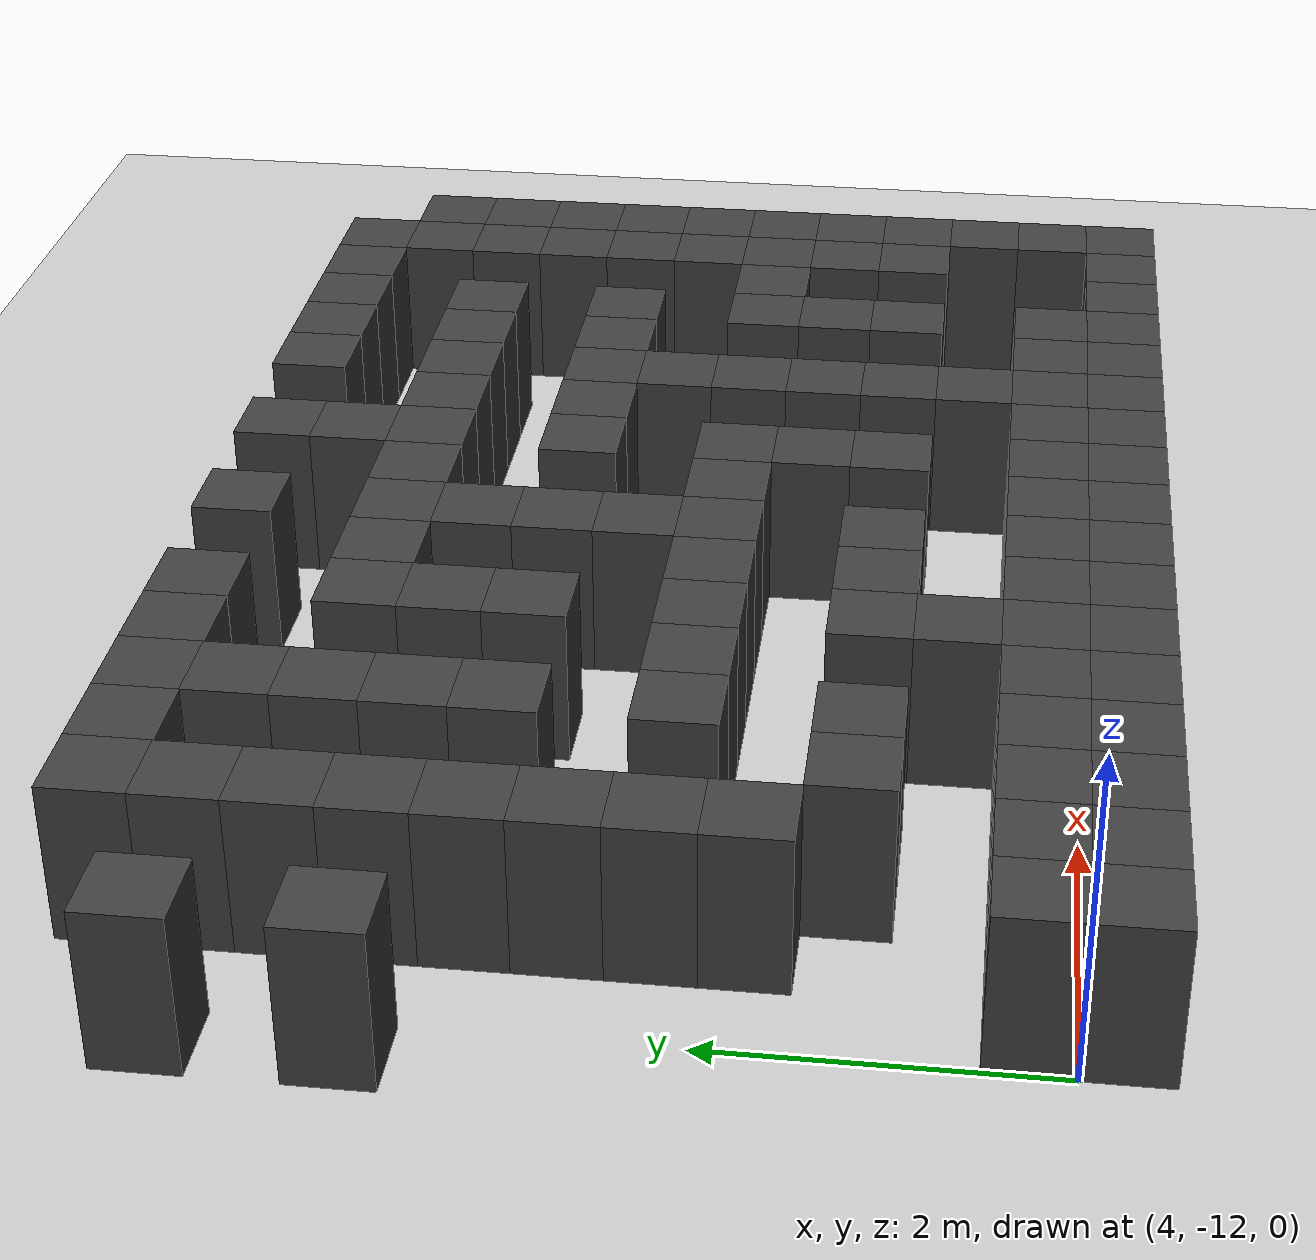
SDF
<sdf version="1.7">
 <world name="map_18814">
  <model name="ground_plane">
   <static>true</static>
   <link name="link">
    <collision name="collision">
     <geometry><plane><normal>0 0 1</normal><size>200 200</size></plane></geometry>
    </collision>
    <visual name="visual">
     <geometry><plane><normal>0 0 1</normal><size>200 200</size></plane></geometry>
     <material><ambient>0.8 0.8 0.8 1</ambient><diffuse>0.8 0.8 0.8 1</diffuse></material>
    </visual>
   </link>
  </model>
  <model name="maze_environment">
   <static>true</static>
   <link name="wall_989">
    <pose>4.750 -6.750 0.500 0 0 0</pose>
    <collision name="col"><geometry><box><size>0.5 0.5 1.0</size></box></geometry></collision>
    <visual name="vis">
     <geometry><box><size>0.5 0.5 1.0</size></box></geometry>
     <material><ambient>0.15 0.15 0.15 1</ambient><diffuse>0.25 0.25 0.25 1</diffuse></material>
    </visual>
   </link>
   <link name="wall_990">
    <pose>5.250 -6.750 0.500 0 0 0</pose>
    <collision name="col"><geometry><box><size>0.5 0.5 1.0</size></box></geometry></collision>
    <visual name="vis">
     <geometry><box><size>0.5 0.5 1.0</size></box></geometry>
     <material><ambient>0.15 0.15 0.15 1</ambient><diffuse>0.25 0.25 0.25 1</diffuse></material>
    </visual>
   </link>
   <link name="wall_991">
    <pose>5.750 -6.750 0.500 0 0 0</pose>
    <collision name="col"><geometry><box><size>0.5 0.5 1.0</size></box></geometry></collision>
    <visual name="vis">
     <geometry><box><size>0.5 0.5 1.0</size></box></geometry>
     <material><ambient>0.15 0.15 0.15 1</ambient><diffuse>0.25 0.25 0.25 1</diffuse></material>
    </visual>
   </link>
   <link name="wall_992">
    <pose>6.250 -6.750 0.500 0 0 0</pose>
    <collision name="col"><geometry><box><size>0.5 0.5 1.0</size></box></geometry></collision>
    <visual name="vis">
     <geometry><box><size>0.5 0.5 1.0</size></box></geometry>
     <material><ambient>0.15 0.15 0.15 1</ambient><diffuse>0.25 0.25 0.25 1</diffuse></material>
    </visual>
   </link>
   <link name="wall_993">
    <pose>6.750 -6.750 0.500 0 0 0</pose>
    <collision name="col"><geometry><box><size>0.5 0.5 1.0</size></box></geometry></collision>
    <visual name="vis">
     <geometry><box><size>0.5 0.5 1.0</size></box></geometry>
     <material><ambient>0.15 0.15 0.15 1</ambient><diffuse>0.25 0.25 0.25 1</diffuse></material>
    </visual>
   </link>
   <link name="wall_994">
    <pose>7.750 -6.750 0.500 0 0 0</pose>
    <collision name="col"><geometry><box><size>0.5 0.5 1.0</size></box></geometry></collision>
    <visual name="vis">
     <geometry><box><size>0.5 0.5 1.0</size></box></geometry>
     <material><ambient>0.15 0.15 0.15 1</ambient><diffuse>0.25 0.25 0.25 1</diffuse></material>
    </visual>
   </link>
   <link name="wall_995">
    <pose>8.750 -6.750 0.500 0 0 0</pose>
    <collision name="col"><geometry><box><size>0.5 0.5 1.0</size></box></geometry></collision>
    <visual name="vis">
     <geometry><box><size>0.5 0.5 1.0</size></box></geometry>
     <material><ambient>0.15 0.15 0.15 1</ambient><diffuse>0.25 0.25 0.25 1</diffuse></material>
    </visual>
   </link>
   <link name="wall_996">
    <pose>9.750 -6.750 0.500 0 0 0</pose>
    <collision name="col"><geometry><box><size>0.5 0.5 1.0</size></box></geometry></collision>
    <visual name="vis">
     <geometry><box><size>0.5 0.5 1.0</size></box></geometry>
     <material><ambient>0.15 0.15 0.15 1</ambient><diffuse>0.25 0.25 0.25 1</diffuse></material>
    </visual>
   </link>
   <link name="wall_997">
    <pose>10.250 -6.750 0.500 0 0 0</pose>
    <collision name="col"><geometry><box><size>0.5 0.5 1.0</size></box></geometry></collision>
    <visual name="vis">
     <geometry><box><size>0.5 0.5 1.0</size></box></geometry>
     <material><ambient>0.15 0.15 0.15 1</ambient><diffuse>0.25 0.25 0.25 1</diffuse></material>
    </visual>
   </link>
   <link name="wall_998">
    <pose>10.750 -6.750 0.500 0 0 0</pose>
    <collision name="col"><geometry><box><size>0.5 0.5 1.0</size></box></geometry></collision>
    <visual name="vis">
     <geometry><box><size>0.5 0.5 1.0</size></box></geometry>
     <material><ambient>0.15 0.15 0.15 1</ambient><diffuse>0.25 0.25 0.25 1</diffuse></material>
    </visual>
   </link>
   <link name="wall_999">
    <pose>11.250 -6.750 0.500 0 0 0</pose>
    <collision name="col"><geometry><box><size>0.5 0.5 1.0</size></box></geometry></collision>
    <visual name="vis">
     <geometry><box><size>0.5 0.5 1.0</size></box></geometry>
     <material><ambient>0.15 0.15 0.15 1</ambient><diffuse>0.25 0.25 0.25 1</diffuse></material>
    </visual>
   </link>
   <link name="wall_1000">
    <pose>11.750 -6.750 0.500 0 0 0</pose>
    <collision name="col"><geometry><box><size>0.5 0.5 1.0</size></box></geometry></collision>
    <visual name="vis">
     <geometry><box><size>0.5 0.5 1.0</size></box></geometry>
     <material><ambient>0.15 0.15 0.15 1</ambient><diffuse>0.25 0.25 0.25 1</diffuse></material>
    </visual>
   </link>
   <link name="wall_1008">
    <pose>3.750 -7.250 0.500 0 0 0</pose>
    <collision name="col"><geometry><box><size>0.5 0.5 1.0</size></box></geometry></collision>
    <visual name="vis">
     <geometry><box><size>0.5 0.5 1.0</size></box></geometry>
     <material><ambient>0.15 0.15 0.15 1</ambient><diffuse>0.25 0.25 0.25 1</diffuse></material>
    </visual>
   </link>
   <link name="wall_1009">
    <pose>4.750 -7.250 0.500 0 0 0</pose>
    <collision name="col"><geometry><box><size>0.5 0.5 1.0</size></box></geometry></collision>
    <visual name="vis">
     <geometry><box><size>0.5 0.5 1.0</size></box></geometry>
     <material><ambient>0.15 0.15 0.15 1</ambient><diffuse>0.25 0.25 0.25 1</diffuse></material>
    </visual>
   </link>
   <link name="wall_1010">
    <pose>5.750 -7.250 0.500 0 0 0</pose>
    <collision name="col"><geometry><box><size>0.5 0.5 1.0</size></box></geometry></collision>
    <visual name="vis">
     <geometry><box><size>0.5 0.5 1.0</size></box></geometry>
     <material><ambient>0.15 0.15 0.15 1</ambient><diffuse>0.25 0.25 0.25 1</diffuse></material>
    </visual>
   </link>
   <link name="wall_1011">
    <pose>8.750 -7.250 0.500 0 0 0</pose>
    <collision name="col"><geometry><box><size>0.5 0.5 1.0</size></box></geometry></collision>
    <visual name="vis">
     <geometry><box><size>0.5 0.5 1.0</size></box></geometry>
     <material><ambient>0.15 0.15 0.15 1</ambient><diffuse>0.25 0.25 0.25 1</diffuse></material>
    </visual>
   </link>
   <link name="wall_1012">
    <pose>11.750 -7.250 0.500 0 0 0</pose>
    <collision name="col"><geometry><box><size>0.5 0.5 1.0</size></box></geometry></collision>
    <visual name="vis">
     <geometry><box><size>0.5 0.5 1.0</size></box></geometry>
     <material><ambient>0.15 0.15 0.15 1</ambient><diffuse>0.25 0.25 0.25 1</diffuse></material>
    </visual>
   </link>
   <link name="wall_1013">
    <pose>12.250 -7.250 0.500 0 0 0</pose>
    <collision name="col"><geometry><box><size>0.5 0.5 1.0</size></box></geometry></collision>
    <visual name="vis">
     <geometry><box><size>0.5 0.5 1.0</size></box></geometry>
     <material><ambient>0.15 0.15 0.15 1</ambient><diffuse>0.25 0.25 0.25 1</diffuse></material>
    </visual>
   </link>
   <link name="wall_1037">
    <pose>4.750 -7.750 0.500 0 0 0</pose>
    <collision name="col"><geometry><box><size>0.5 0.5 1.0</size></box></geometry></collision>
    <visual name="vis">
     <geometry><box><size>0.5 0.5 1.0</size></box></geometry>
     <material><ambient>0.15 0.15 0.15 1</ambient><diffuse>0.25 0.25 0.25 1</diffuse></material>
    </visual>
   </link>
   <link name="wall_1038">
    <pose>5.750 -7.750 0.500 0 0 0</pose>
    <collision name="col"><geometry><box><size>0.5 0.5 1.0</size></box></geometry></collision>
    <visual name="vis">
     <geometry><box><size>0.5 0.5 1.0</size></box></geometry>
     <material><ambient>0.15 0.15 0.15 1</ambient><diffuse>0.25 0.25 0.25 1</diffuse></material>
    </visual>
   </link>
   <link name="wall_1039">
    <pose>6.750 -7.750 0.500 0 0 0</pose>
    <collision name="col"><geometry><box><size>0.5 0.5 1.0</size></box></geometry></collision>
    <visual name="vis">
     <geometry><box><size>0.5 0.5 1.0</size></box></geometry>
     <material><ambient>0.15 0.15 0.15 1</ambient><diffuse>0.25 0.25 0.25 1</diffuse></material>
    </visual>
   </link>
   <link name="wall_1040">
    <pose>7.250 -7.750 0.500 0 0 0</pose>
    <collision name="col"><geometry><box><size>0.5 0.5 1.0</size></box></geometry></collision>
    <visual name="vis">
     <geometry><box><size>0.5 0.5 1.0</size></box></geometry>
     <material><ambient>0.15 0.15 0.15 1</ambient><diffuse>0.25 0.25 0.25 1</diffuse></material>
    </visual>
   </link>
   <link name="wall_1041">
    <pose>7.750 -7.750 0.500 0 0 0</pose>
    <collision name="col"><geometry><box><size>0.5 0.5 1.0</size></box></geometry></collision>
    <visual name="vis">
     <geometry><box><size>0.5 0.5 1.0</size></box></geometry>
     <material><ambient>0.15 0.15 0.15 1</ambient><diffuse>0.25 0.25 0.25 1</diffuse></material>
    </visual>
   </link>
   <link name="wall_1042">
    <pose>8.250 -7.750 0.500 0 0 0</pose>
    <collision name="col"><geometry><box><size>0.5 0.5 1.0</size></box></geometry></collision>
    <visual name="vis">
     <geometry><box><size>0.5 0.5 1.0</size></box></geometry>
     <material><ambient>0.15 0.15 0.15 1</ambient><diffuse>0.25 0.25 0.25 1</diffuse></material>
    </visual>
   </link>
   <link name="wall_1043">
    <pose>8.750 -7.750 0.500 0 0 0</pose>
    <collision name="col"><geometry><box><size>0.5 0.5 1.0</size></box></geometry></collision>
    <visual name="vis">
     <geometry><box><size>0.5 0.5 1.0</size></box></geometry>
     <material><ambient>0.15 0.15 0.15 1</ambient><diffuse>0.25 0.25 0.25 1</diffuse></material>
    </visual>
   </link>
   <link name="wall_1044">
    <pose>9.250 -7.750 0.500 0 0 0</pose>
    <collision name="col"><geometry><box><size>0.5 0.5 1.0</size></box></geometry></collision>
    <visual name="vis">
     <geometry><box><size>0.5 0.5 1.0</size></box></geometry>
     <material><ambient>0.15 0.15 0.15 1</ambient><diffuse>0.25 0.25 0.25 1</diffuse></material>
    </visual>
   </link>
   <link name="wall_1045">
    <pose>9.750 -7.750 0.500 0 0 0</pose>
    <collision name="col"><geometry><box><size>0.5 0.5 1.0</size></box></geometry></collision>
    <visual name="vis">
     <geometry><box><size>0.5 0.5 1.0</size></box></geometry>
     <material><ambient>0.15 0.15 0.15 1</ambient><diffuse>0.25 0.25 0.25 1</diffuse></material>
    </visual>
   </link>
   <link name="wall_1046">
    <pose>10.250 -7.750 0.500 0 0 0</pose>
    <collision name="col"><geometry><box><size>0.5 0.5 1.0</size></box></geometry></collision>
    <visual name="vis">
     <geometry><box><size>0.5 0.5 1.0</size></box></geometry>
     <material><ambient>0.15 0.15 0.15 1</ambient><diffuse>0.25 0.25 0.25 1</diffuse></material>
    </visual>
   </link>
   <link name="wall_1047">
    <pose>10.750 -7.750 0.500 0 0 0</pose>
    <collision name="col"><geometry><box><size>0.5 0.5 1.0</size></box></geometry></collision>
    <visual name="vis">
     <geometry><box><size>0.5 0.5 1.0</size></box></geometry>
     <material><ambient>0.15 0.15 0.15 1</ambient><diffuse>0.25 0.25 0.25 1</diffuse></material>
    </visual>
   </link>
   <link name="wall_1048">
    <pose>11.750 -7.750 0.500 0 0 0</pose>
    <collision name="col"><geometry><box><size>0.5 0.5 1.0</size></box></geometry></collision>
    <visual name="vis">
     <geometry><box><size>0.5 0.5 1.0</size></box></geometry>
     <material><ambient>0.15 0.15 0.15 1</ambient><diffuse>0.25 0.25 0.25 1</diffuse></material>
    </visual>
   </link>
   <link name="wall_1049">
    <pose>12.250 -7.750 0.500 0 0 0</pose>
    <collision name="col"><geometry><box><size>0.5 0.5 1.0</size></box></geometry></collision>
    <visual name="vis">
     <geometry><box><size>0.5 0.5 1.0</size></box></geometry>
     <material><ambient>0.15 0.15 0.15 1</ambient><diffuse>0.25 0.25 0.25 1</diffuse></material>
    </visual>
   </link>
   <link name="wall_1060">
    <pose>3.750 -8.250 0.500 0 0 0</pose>
    <collision name="col"><geometry><box><size>0.5 0.5 1.0</size></box></geometry></collision>
    <visual name="vis">
     <geometry><box><size>0.5 0.5 1.0</size></box></geometry>
     <material><ambient>0.15 0.15 0.15 1</ambient><diffuse>0.25 0.25 0.25 1</diffuse></material>
    </visual>
   </link>
   <link name="wall_1061">
    <pose>4.750 -8.250 0.500 0 0 0</pose>
    <collision name="col"><geometry><box><size>0.5 0.5 1.0</size></box></geometry></collision>
    <visual name="vis">
     <geometry><box><size>0.5 0.5 1.0</size></box></geometry>
     <material><ambient>0.15 0.15 0.15 1</ambient><diffuse>0.25 0.25 0.25 1</diffuse></material>
    </visual>
   </link>
   <link name="wall_1062">
    <pose>5.750 -8.250 0.500 0 0 0</pose>
    <collision name="col"><geometry><box><size>0.5 0.5 1.0</size></box></geometry></collision>
    <visual name="vis">
     <geometry><box><size>0.5 0.5 1.0</size></box></geometry>
     <material><ambient>0.15 0.15 0.15 1</ambient><diffuse>0.25 0.25 0.25 1</diffuse></material>
    </visual>
   </link>
   <link name="wall_1063">
    <pose>6.750 -8.250 0.500 0 0 0</pose>
    <collision name="col"><geometry><box><size>0.5 0.5 1.0</size></box></geometry></collision>
    <visual name="vis">
     <geometry><box><size>0.5 0.5 1.0</size></box></geometry>
     <material><ambient>0.15 0.15 0.15 1</ambient><diffuse>0.25 0.25 0.25 1</diffuse></material>
    </visual>
   </link>
   <link name="wall_1064">
    <pose>7.750 -8.250 0.500 0 0 0</pose>
    <collision name="col"><geometry><box><size>0.5 0.5 1.0</size></box></geometry></collision>
    <visual name="vis">
     <geometry><box><size>0.5 0.5 1.0</size></box></geometry>
     <material><ambient>0.15 0.15 0.15 1</ambient><diffuse>0.25 0.25 0.25 1</diffuse></material>
    </visual>
   </link>
   <link name="wall_1065">
    <pose>11.750 -8.250 0.500 0 0 0</pose>
    <collision name="col"><geometry><box><size>0.5 0.5 1.0</size></box></geometry></collision>
    <visual name="vis">
     <geometry><box><size>0.5 0.5 1.0</size></box></geometry>
     <material><ambient>0.15 0.15 0.15 1</ambient><diffuse>0.25 0.25 0.25 1</diffuse></material>
    </visual>
   </link>
   <link name="wall_1066">
    <pose>12.250 -8.250 0.500 0 0 0</pose>
    <collision name="col"><geometry><box><size>0.5 0.5 1.0</size></box></geometry></collision>
    <visual name="vis">
     <geometry><box><size>0.5 0.5 1.0</size></box></geometry>
     <material><ambient>0.15 0.15 0.15 1</ambient><diffuse>0.25 0.25 0.25 1</diffuse></material>
    </visual>
   </link>
   <link name="wall_1089">
    <pose>4.750 -8.750 0.500 0 0 0</pose>
    <collision name="col"><geometry><box><size>0.5 0.5 1.0</size></box></geometry></collision>
    <visual name="vis">
     <geometry><box><size>0.5 0.5 1.0</size></box></geometry>
     <material><ambient>0.15 0.15 0.15 1</ambient><diffuse>0.25 0.25 0.25 1</diffuse></material>
    </visual>
   </link>
   <link name="wall_1090">
    <pose>5.750 -8.750 0.500 0 0 0</pose>
    <collision name="col"><geometry><box><size>0.5 0.5 1.0</size></box></geometry></collision>
    <visual name="vis">
     <geometry><box><size>0.5 0.5 1.0</size></box></geometry>
     <material><ambient>0.15 0.15 0.15 1</ambient><diffuse>0.25 0.25 0.25 1</diffuse></material>
    </visual>
   </link>
   <link name="wall_1091">
    <pose>6.750 -8.750 0.500 0 0 0</pose>
    <collision name="col"><geometry><box><size>0.5 0.5 1.0</size></box></geometry></collision>
    <visual name="vis">
     <geometry><box><size>0.5 0.5 1.0</size></box></geometry>
     <material><ambient>0.15 0.15 0.15 1</ambient><diffuse>0.25 0.25 0.25 1</diffuse></material>
    </visual>
   </link>
   <link name="wall_1092">
    <pose>7.750 -8.750 0.500 0 0 0</pose>
    <collision name="col"><geometry><box><size>0.5 0.5 1.0</size></box></geometry></collision>
    <visual name="vis">
     <geometry><box><size>0.5 0.5 1.0</size></box></geometry>
     <material><ambient>0.15 0.15 0.15 1</ambient><diffuse>0.25 0.25 0.25 1</diffuse></material>
    </visual>
   </link>
   <link name="wall_1093">
    <pose>8.750 -8.750 0.500 0 0 0</pose>
    <collision name="col"><geometry><box><size>0.5 0.5 1.0</size></box></geometry></collision>
    <visual name="vis">
     <geometry><box><size>0.5 0.5 1.0</size></box></geometry>
     <material><ambient>0.15 0.15 0.15 1</ambient><diffuse>0.25 0.25 0.25 1</diffuse></material>
    </visual>
   </link>
   <link name="wall_1094">
    <pose>9.250 -8.750 0.500 0 0 0</pose>
    <collision name="col"><geometry><box><size>0.5 0.5 1.0</size></box></geometry></collision>
    <visual name="vis">
     <geometry><box><size>0.5 0.5 1.0</size></box></geometry>
     <material><ambient>0.15 0.15 0.15 1</ambient><diffuse>0.25 0.25 0.25 1</diffuse></material>
    </visual>
   </link>
   <link name="wall_1095">
    <pose>9.750 -8.750 0.500 0 0 0</pose>
    <collision name="col"><geometry><box><size>0.5 0.5 1.0</size></box></geometry></collision>
    <visual name="vis">
     <geometry><box><size>0.5 0.5 1.0</size></box></geometry>
     <material><ambient>0.15 0.15 0.15 1</ambient><diffuse>0.25 0.25 0.25 1</diffuse></material>
    </visual>
   </link>
   <link name="wall_1096">
    <pose>10.250 -8.750 0.500 0 0 0</pose>
    <collision name="col"><geometry><box><size>0.5 0.5 1.0</size></box></geometry></collision>
    <visual name="vis">
     <geometry><box><size>0.5 0.5 1.0</size></box></geometry>
     <material><ambient>0.15 0.15 0.15 1</ambient><diffuse>0.25 0.25 0.25 1</diffuse></material>
    </visual>
   </link>
   <link name="wall_1097">
    <pose>10.750 -8.750 0.500 0 0 0</pose>
    <collision name="col"><geometry><box><size>0.5 0.5 1.0</size></box></geometry></collision>
    <visual name="vis">
     <geometry><box><size>0.5 0.5 1.0</size></box></geometry>
     <material><ambient>0.15 0.15 0.15 1</ambient><diffuse>0.25 0.25 0.25 1</diffuse></material>
    </visual>
   </link>
   <link name="wall_1098">
    <pose>11.750 -8.750 0.500 0 0 0</pose>
    <collision name="col"><geometry><box><size>0.5 0.5 1.0</size></box></geometry></collision>
    <visual name="vis">
     <geometry><box><size>0.5 0.5 1.0</size></box></geometry>
     <material><ambient>0.15 0.15 0.15 1</ambient><diffuse>0.25 0.25 0.25 1</diffuse></material>
    </visual>
   </link>
   <link name="wall_1099">
    <pose>12.250 -8.750 0.500 0 0 0</pose>
    <collision name="col"><geometry><box><size>0.5 0.5 1.0</size></box></geometry></collision>
    <visual name="vis">
     <geometry><box><size>0.5 0.5 1.0</size></box></geometry>
     <material><ambient>0.15 0.15 0.15 1</ambient><diffuse>0.25 0.25 0.25 1</diffuse></material>
    </visual>
   </link>
   <link name="wall_1112">
    <pose>4.750 -9.250 0.500 0 0 0</pose>
    <collision name="col"><geometry><box><size>0.5 0.5 1.0</size></box></geometry></collision>
    <visual name="vis">
     <geometry><box><size>0.5 0.5 1.0</size></box></geometry>
     <material><ambient>0.15 0.15 0.15 1</ambient><diffuse>0.25 0.25 0.25 1</diffuse></material>
    </visual>
   </link>
   <link name="wall_1113">
    <pose>7.750 -9.250 0.500 0 0 0</pose>
    <collision name="col"><geometry><box><size>0.5 0.5 1.0</size></box></geometry></collision>
    <visual name="vis">
     <geometry><box><size>0.5 0.5 1.0</size></box></geometry>
     <material><ambient>0.15 0.15 0.15 1</ambient><diffuse>0.25 0.25 0.25 1</diffuse></material>
    </visual>
   </link>
   <link name="wall_1114">
    <pose>9.750 -9.250 0.500 0 0 0</pose>
    <collision name="col"><geometry><box><size>0.5 0.5 1.0</size></box></geometry></collision>
    <visual name="vis">
     <geometry><box><size>0.5 0.5 1.0</size></box></geometry>
     <material><ambient>0.15 0.15 0.15 1</ambient><diffuse>0.25 0.25 0.25 1</diffuse></material>
    </visual>
   </link>
   <link name="wall_1115">
    <pose>11.750 -9.250 0.500 0 0 0</pose>
    <collision name="col"><geometry><box><size>0.5 0.5 1.0</size></box></geometry></collision>
    <visual name="vis">
     <geometry><box><size>0.5 0.5 1.0</size></box></geometry>
     <material><ambient>0.15 0.15 0.15 1</ambient><diffuse>0.25 0.25 0.25 1</diffuse></material>
    </visual>
   </link>
   <link name="wall_1116">
    <pose>12.250 -9.250 0.500 0 0 0</pose>
    <collision name="col"><geometry><box><size>0.5 0.5 1.0</size></box></geometry></collision>
    <visual name="vis">
     <geometry><box><size>0.5 0.5 1.0</size></box></geometry>
     <material><ambient>0.15 0.15 0.15 1</ambient><diffuse>0.25 0.25 0.25 1</diffuse></material>
    </visual>
   </link>
   <link name="wall_1140">
    <pose>4.750 -9.750 0.500 0 0 0</pose>
    <collision name="col"><geometry><box><size>0.5 0.5 1.0</size></box></geometry></collision>
    <visual name="vis">
     <geometry><box><size>0.5 0.5 1.0</size></box></geometry>
     <material><ambient>0.15 0.15 0.15 1</ambient><diffuse>0.25 0.25 0.25 1</diffuse></material>
    </visual>
   </link>
   <link name="wall_1141">
    <pose>5.750 -9.750 0.500 0 0 0</pose>
    <collision name="col"><geometry><box><size>0.5 0.5 1.0</size></box></geometry></collision>
    <visual name="vis">
     <geometry><box><size>0.5 0.5 1.0</size></box></geometry>
     <material><ambient>0.15 0.15 0.15 1</ambient><diffuse>0.25 0.25 0.25 1</diffuse></material>
    </visual>
   </link>
   <link name="wall_1142">
    <pose>6.250 -9.750 0.500 0 0 0</pose>
    <collision name="col"><geometry><box><size>0.5 0.5 1.0</size></box></geometry></collision>
    <visual name="vis">
     <geometry><box><size>0.5 0.5 1.0</size></box></geometry>
     <material><ambient>0.15 0.15 0.15 1</ambient><diffuse>0.25 0.25 0.25 1</diffuse></material>
    </visual>
   </link>
   <link name="wall_1143">
    <pose>6.750 -9.750 0.500 0 0 0</pose>
    <collision name="col"><geometry><box><size>0.5 0.5 1.0</size></box></geometry></collision>
    <visual name="vis">
     <geometry><box><size>0.5 0.5 1.0</size></box></geometry>
     <material><ambient>0.15 0.15 0.15 1</ambient><diffuse>0.25 0.25 0.25 1</diffuse></material>
    </visual>
   </link>
   <link name="wall_1144">
    <pose>7.250 -9.750 0.500 0 0 0</pose>
    <collision name="col"><geometry><box><size>0.5 0.5 1.0</size></box></geometry></collision>
    <visual name="vis">
     <geometry><box><size>0.5 0.5 1.0</size></box></geometry>
     <material><ambient>0.15 0.15 0.15 1</ambient><diffuse>0.25 0.25 0.25 1</diffuse></material>
    </visual>
   </link>
   <link name="wall_1145">
    <pose>7.750 -9.750 0.500 0 0 0</pose>
    <collision name="col"><geometry><box><size>0.5 0.5 1.0</size></box></geometry></collision>
    <visual name="vis">
     <geometry><box><size>0.5 0.5 1.0</size></box></geometry>
     <material><ambient>0.15 0.15 0.15 1</ambient><diffuse>0.25 0.25 0.25 1</diffuse></material>
    </visual>
   </link>
   <link name="wall_1146">
    <pose>8.250 -9.750 0.500 0 0 0</pose>
    <collision name="col"><geometry><box><size>0.5 0.5 1.0</size></box></geometry></collision>
    <visual name="vis">
     <geometry><box><size>0.5 0.5 1.0</size></box></geometry>
     <material><ambient>0.15 0.15 0.15 1</ambient><diffuse>0.25 0.25 0.25 1</diffuse></material>
    </visual>
   </link>
   <link name="wall_1147">
    <pose>8.750 -9.750 0.500 0 0 0</pose>
    <collision name="col"><geometry><box><size>0.5 0.5 1.0</size></box></geometry></collision>
    <visual name="vis">
     <geometry><box><size>0.5 0.5 1.0</size></box></geometry>
     <material><ambient>0.15 0.15 0.15 1</ambient><diffuse>0.25 0.25 0.25 1</diffuse></material>
    </visual>
   </link>
   <link name="wall_1148">
    <pose>9.750 -9.750 0.500 0 0 0</pose>
    <collision name="col"><geometry><box><size>0.5 0.5 1.0</size></box></geometry></collision>
    <visual name="vis">
     <geometry><box><size>0.5 0.5 1.0</size></box></geometry>
     <material><ambient>0.15 0.15 0.15 1</ambient><diffuse>0.25 0.25 0.25 1</diffuse></material>
    </visual>
   </link>
   <link name="wall_1149">
    <pose>10.750 -9.750 0.500 0 0 0</pose>
    <collision name="col"><geometry><box><size>0.5 0.5 1.0</size></box></geometry></collision>
    <visual name="vis">
     <geometry><box><size>0.5 0.5 1.0</size></box></geometry>
     <material><ambient>0.15 0.15 0.15 1</ambient><diffuse>0.25 0.25 0.25 1</diffuse></material>
    </visual>
   </link>
   <link name="wall_1150">
    <pose>11.250 -9.750 0.500 0 0 0</pose>
    <collision name="col"><geometry><box><size>0.5 0.5 1.0</size></box></geometry></collision>
    <visual name="vis">
     <geometry><box><size>0.5 0.5 1.0</size></box></geometry>
     <material><ambient>0.15 0.15 0.15 1</ambient><diffuse>0.25 0.25 0.25 1</diffuse></material>
    </visual>
   </link>
   <link name="wall_1151">
    <pose>11.750 -9.750 0.500 0 0 0</pose>
    <collision name="col"><geometry><box><size>0.5 0.5 1.0</size></box></geometry></collision>
    <visual name="vis">
     <geometry><box><size>0.5 0.5 1.0</size></box></geometry>
     <material><ambient>0.15 0.15 0.15 1</ambient><diffuse>0.25 0.25 0.25 1</diffuse></material>
    </visual>
   </link>
   <link name="wall_1152">
    <pose>12.250 -9.750 0.500 0 0 0</pose>
    <collision name="col"><geometry><box><size>0.5 0.5 1.0</size></box></geometry></collision>
    <visual name="vis">
     <geometry><box><size>0.5 0.5 1.0</size></box></geometry>
     <material><ambient>0.15 0.15 0.15 1</ambient><diffuse>0.25 0.25 0.25 1</diffuse></material>
    </visual>
   </link>
   <link name="wall_1164">
    <pose>4.750 -10.250 0.500 0 0 0</pose>
    <collision name="col"><geometry><box><size>0.5 0.5 1.0</size></box></geometry></collision>
    <visual name="vis">
     <geometry><box><size>0.5 0.5 1.0</size></box></geometry>
     <material><ambient>0.15 0.15 0.15 1</ambient><diffuse>0.25 0.25 0.25 1</diffuse></material>
    </visual>
   </link>
   <link name="wall_1165">
    <pose>8.750 -10.250 0.500 0 0 0</pose>
    <collision name="col"><geometry><box><size>0.5 0.5 1.0</size></box></geometry></collision>
    <visual name="vis">
     <geometry><box><size>0.5 0.5 1.0</size></box></geometry>
     <material><ambient>0.15 0.15 0.15 1</ambient><diffuse>0.25 0.25 0.25 1</diffuse></material>
    </visual>
   </link>
   <link name="wall_1166">
    <pose>9.750 -10.250 0.500 0 0 0</pose>
    <collision name="col"><geometry><box><size>0.5 0.5 1.0</size></box></geometry></collision>
    <visual name="vis">
     <geometry><box><size>0.5 0.5 1.0</size></box></geometry>
     <material><ambient>0.15 0.15 0.15 1</ambient><diffuse>0.25 0.25 0.25 1</diffuse></material>
    </visual>
   </link>
   <link name="wall_1167">
    <pose>10.750 -10.250 0.500 0 0 0</pose>
    <collision name="col"><geometry><box><size>0.5 0.5 1.0</size></box></geometry></collision>
    <visual name="vis">
     <geometry><box><size>0.5 0.5 1.0</size></box></geometry>
     <material><ambient>0.15 0.15 0.15 1</ambient><diffuse>0.25 0.25 0.25 1</diffuse></material>
    </visual>
   </link>
   <link name="wall_1168">
    <pose>11.750 -10.250 0.500 0 0 0</pose>
    <collision name="col"><geometry><box><size>0.5 0.5 1.0</size></box></geometry></collision>
    <visual name="vis">
     <geometry><box><size>0.5 0.5 1.0</size></box></geometry>
     <material><ambient>0.15 0.15 0.15 1</ambient><diffuse>0.25 0.25 0.25 1</diffuse></material>
    </visual>
   </link>
   <link name="wall_1169">
    <pose>12.250 -10.250 0.500 0 0 0</pose>
    <collision name="col"><geometry><box><size>0.5 0.5 1.0</size></box></geometry></collision>
    <visual name="vis">
     <geometry><box><size>0.5 0.5 1.0</size></box></geometry>
     <material><ambient>0.15 0.15 0.15 1</ambient><diffuse>0.25 0.25 0.25 1</diffuse></material>
    </visual>
   </link>
   <link name="wall_1192">
    <pose>5.250 -10.750 0.500 0 0 0</pose>
    <collision name="col"><geometry><box><size>0.5 0.5 1.0</size></box></geometry></collision>
    <visual name="vis">
     <geometry><box><size>0.5 0.5 1.0</size></box></geometry>
     <material><ambient>0.15 0.15 0.15 1</ambient><diffuse>0.25 0.25 0.25 1</diffuse></material>
    </visual>
   </link>
   <link name="wall_1193">
    <pose>5.750 -10.750 0.500 0 0 0</pose>
    <collision name="col"><geometry><box><size>0.5 0.5 1.0</size></box></geometry></collision>
    <visual name="vis">
     <geometry><box><size>0.5 0.5 1.0</size></box></geometry>
     <material><ambient>0.15 0.15 0.15 1</ambient><diffuse>0.25 0.25 0.25 1</diffuse></material>
    </visual>
   </link>
   <link name="wall_1194">
    <pose>6.750 -10.750 0.500 0 0 0</pose>
    <collision name="col"><geometry><box><size>0.5 0.5 1.0</size></box></geometry></collision>
    <visual name="vis">
     <geometry><box><size>0.5 0.5 1.0</size></box></geometry>
     <material><ambient>0.15 0.15 0.15 1</ambient><diffuse>0.25 0.25 0.25 1</diffuse></material>
    </visual>
   </link>
   <link name="wall_1195">
    <pose>7.250 -10.750 0.500 0 0 0</pose>
    <collision name="col"><geometry><box><size>0.5 0.5 1.0</size></box></geometry></collision>
    <visual name="vis">
     <geometry><box><size>0.5 0.5 1.0</size></box></geometry>
     <material><ambient>0.15 0.15 0.15 1</ambient><diffuse>0.25 0.25 0.25 1</diffuse></material>
    </visual>
   </link>
   <link name="wall_1196">
    <pose>7.750 -10.750 0.500 0 0 0</pose>
    <collision name="col"><geometry><box><size>0.5 0.5 1.0</size></box></geometry></collision>
    <visual name="vis">
     <geometry><box><size>0.5 0.5 1.0</size></box></geometry>
     <material><ambient>0.15 0.15 0.15 1</ambient><diffuse>0.25 0.25 0.25 1</diffuse></material>
    </visual>
   </link>
   <link name="wall_1197">
    <pose>8.750 -10.750 0.500 0 0 0</pose>
    <collision name="col"><geometry><box><size>0.5 0.5 1.0</size></box></geometry></collision>
    <visual name="vis">
     <geometry><box><size>0.5 0.5 1.0</size></box></geometry>
     <material><ambient>0.15 0.15 0.15 1</ambient><diffuse>0.25 0.25 0.25 1</diffuse></material>
    </visual>
   </link>
   <link name="wall_1198">
    <pose>9.750 -10.750 0.500 0 0 0</pose>
    <collision name="col"><geometry><box><size>0.5 0.5 1.0</size></box></geometry></collision>
    <visual name="vis">
     <geometry><box><size>0.5 0.5 1.0</size></box></geometry>
     <material><ambient>0.15 0.15 0.15 1</ambient><diffuse>0.25 0.25 0.25 1</diffuse></material>
    </visual>
   </link>
   <link name="wall_1199">
    <pose>10.750 -10.750 0.500 0 0 0</pose>
    <collision name="col"><geometry><box><size>0.5 0.5 1.0</size></box></geometry></collision>
    <visual name="vis">
     <geometry><box><size>0.5 0.5 1.0</size></box></geometry>
     <material><ambient>0.15 0.15 0.15 1</ambient><diffuse>0.25 0.25 0.25 1</diffuse></material>
    </visual>
   </link>
   <link name="wall_1200">
    <pose>11.750 -10.750 0.500 0 0 0</pose>
    <collision name="col"><geometry><box><size>0.5 0.5 1.0</size></box></geometry></collision>
    <visual name="vis">
     <geometry><box><size>0.5 0.5 1.0</size></box></geometry>
     <material><ambient>0.15 0.15 0.15 1</ambient><diffuse>0.25 0.25 0.25 1</diffuse></material>
    </visual>
   </link>
   <link name="wall_1201">
    <pose>12.250 -10.750 0.500 0 0 0</pose>
    <collision name="col"><geometry><box><size>0.5 0.5 1.0</size></box></geometry></collision>
    <visual name="vis">
     <geometry><box><size>0.5 0.5 1.0</size></box></geometry>
     <material><ambient>0.15 0.15 0.15 1</ambient><diffuse>0.25 0.25 0.25 1</diffuse></material>
    </visual>
   </link>
   <link name="wall_1207">
    <pose>6.750 -11.250 0.500 0 0 0</pose>
    <collision name="col"><geometry><box><size>0.5 0.5 1.0</size></box></geometry></collision>
    <visual name="vis">
     <geometry><box><size>0.5 0.5 1.0</size></box></geometry>
     <material><ambient>0.15 0.15 0.15 1</ambient><diffuse>0.25 0.25 0.25 1</diffuse></material>
    </visual>
   </link>
   <link name="wall_1208">
    <pose>9.750 -11.250 0.500 0 0 0</pose>
    <collision name="col"><geometry><box><size>0.5 0.5 1.0</size></box></geometry></collision>
    <visual name="vis">
     <geometry><box><size>0.5 0.5 1.0</size></box></geometry>
     <material><ambient>0.15 0.15 0.15 1</ambient><diffuse>0.25 0.25 0.25 1</diffuse></material>
    </visual>
   </link>
   <link name="wall_1209">
    <pose>12.250 -11.250 0.500 0 0 0</pose>
    <collision name="col"><geometry><box><size>0.5 0.5 1.0</size></box></geometry></collision>
    <visual name="vis">
     <geometry><box><size>0.5 0.5 1.0</size></box></geometry>
     <material><ambient>0.15 0.15 0.15 1</ambient><diffuse>0.25 0.25 0.25 1</diffuse></material>
    </visual>
   </link>
   <link name="wall_1243">
    <pose>4.250 -11.750 0.500 0 0 0</pose>
    <collision name="col"><geometry><box><size>0.5 0.5 1.0</size></box></geometry></collision>
    <visual name="vis">
     <geometry><box><size>0.5 0.5 1.0</size></box></geometry>
     <material><ambient>0.15 0.15 0.15 1</ambient><diffuse>0.25 0.25 0.25 1</diffuse></material>
    </visual>
   </link>
   <link name="wall_1244">
    <pose>4.750 -11.750 0.500 0 0 0</pose>
    <collision name="col"><geometry><box><size>0.5 0.5 1.0</size></box></geometry></collision>
    <visual name="vis">
     <geometry><box><size>0.5 0.5 1.0</size></box></geometry>
     <material><ambient>0.15 0.15 0.15 1</ambient><diffuse>0.25 0.25 0.25 1</diffuse></material>
    </visual>
   </link>
   <link name="wall_1245">
    <pose>5.250 -11.750 0.500 0 0 0</pose>
    <collision name="col"><geometry><box><size>0.5 0.5 1.0</size></box></geometry></collision>
    <visual name="vis">
     <geometry><box><size>0.5 0.5 1.0</size></box></geometry>
     <material><ambient>0.15 0.15 0.15 1</ambient><diffuse>0.25 0.25 0.25 1</diffuse></material>
    </visual>
   </link>
   <link name="wall_1246">
    <pose>5.750 -11.750 0.500 0 0 0</pose>
    <collision name="col"><geometry><box><size>0.5 0.5 1.0</size></box></geometry></collision>
    <visual name="vis">
     <geometry><box><size>0.5 0.5 1.0</size></box></geometry>
     <material><ambient>0.15 0.15 0.15 1</ambient><diffuse>0.25 0.25 0.25 1</diffuse></material>
    </visual>
   </link>
   <link name="wall_1247">
    <pose>6.250 -11.750 0.500 0 0 0</pose>
    <collision name="col"><geometry><box><size>0.5 0.5 1.0</size></box></geometry></collision>
    <visual name="vis">
     <geometry><box><size>0.5 0.5 1.0</size></box></geometry>
     <material><ambient>0.15 0.15 0.15 1</ambient><diffuse>0.25 0.25 0.25 1</diffuse></material>
    </visual>
   </link>
   <link name="wall_1248">
    <pose>6.750 -11.750 0.500 0 0 0</pose>
    <collision name="col"><geometry><box><size>0.5 0.5 1.0</size></box></geometry></collision>
    <visual name="vis">
     <geometry><box><size>0.5 0.5 1.0</size></box></geometry>
     <material><ambient>0.15 0.15 0.15 1</ambient><diffuse>0.25 0.25 0.25 1</diffuse></material>
    </visual>
   </link>
   <link name="wall_1249">
    <pose>7.250 -11.750 0.500 0 0 0</pose>
    <collision name="col"><geometry><box><size>0.5 0.5 1.0</size></box></geometry></collision>
    <visual name="vis">
     <geometry><box><size>0.5 0.5 1.0</size></box></geometry>
     <material><ambient>0.15 0.15 0.15 1</ambient><diffuse>0.25 0.25 0.25 1</diffuse></material>
    </visual>
   </link>
   <link name="wall_1250">
    <pose>7.750 -11.750 0.500 0 0 0</pose>
    <collision name="col"><geometry><box><size>0.5 0.5 1.0</size></box></geometry></collision>
    <visual name="vis">
     <geometry><box><size>0.5 0.5 1.0</size></box></geometry>
     <material><ambient>0.15 0.15 0.15 1</ambient><diffuse>0.25 0.25 0.25 1</diffuse></material>
    </visual>
   </link>
   <link name="wall_1251">
    <pose>8.250 -11.750 0.500 0 0 0</pose>
    <collision name="col"><geometry><box><size>0.5 0.5 1.0</size></box></geometry></collision>
    <visual name="vis">
     <geometry><box><size>0.5 0.5 1.0</size></box></geometry>
     <material><ambient>0.15 0.15 0.15 1</ambient><diffuse>0.25 0.25 0.25 1</diffuse></material>
    </visual>
   </link>
   <link name="wall_1252">
    <pose>8.750 -11.750 0.500 0 0 0</pose>
    <collision name="col"><geometry><box><size>0.5 0.5 1.0</size></box></geometry></collision>
    <visual name="vis">
     <geometry><box><size>0.5 0.5 1.0</size></box></geometry>
     <material><ambient>0.15 0.15 0.15 1</ambient><diffuse>0.25 0.25 0.25 1</diffuse></material>
    </visual>
   </link>
   <link name="wall_1253">
    <pose>9.250 -11.750 0.500 0 0 0</pose>
    <collision name="col"><geometry><box><size>0.5 0.5 1.0</size></box></geometry></collision>
    <visual name="vis">
     <geometry><box><size>0.5 0.5 1.0</size></box></geometry>
     <material><ambient>0.15 0.15 0.15 1</ambient><diffuse>0.25 0.25 0.25 1</diffuse></material>
    </visual>
   </link>
   <link name="wall_1254">
    <pose>9.750 -11.750 0.500 0 0 0</pose>
    <collision name="col"><geometry><box><size>0.5 0.5 1.0</size></box></geometry></collision>
    <visual name="vis">
     <geometry><box><size>0.5 0.5 1.0</size></box></geometry>
     <material><ambient>0.15 0.15 0.15 1</ambient><diffuse>0.25 0.25 0.25 1</diffuse></material>
    </visual>
   </link>
   <link name="wall_1255">
    <pose>10.250 -11.750 0.500 0 0 0</pose>
    <collision name="col"><geometry><box><size>0.5 0.5 1.0</size></box></geometry></collision>
    <visual name="vis">
     <geometry><box><size>0.5 0.5 1.0</size></box></geometry>
     <material><ambient>0.15 0.15 0.15 1</ambient><diffuse>0.25 0.25 0.25 1</diffuse></material>
    </visual>
   </link>
   <link name="wall_1256">
    <pose>10.750 -11.750 0.500 0 0 0</pose>
    <collision name="col"><geometry><box><size>0.5 0.5 1.0</size></box></geometry></collision>
    <visual name="vis">
     <geometry><box><size>0.5 0.5 1.0</size></box></geometry>
     <material><ambient>0.15 0.15 0.15 1</ambient><diffuse>0.25 0.25 0.25 1</diffuse></material>
    </visual>
   </link>
   <link name="wall_1257">
    <pose>12.250 -11.750 0.500 0 0 0</pose>
    <collision name="col"><geometry><box><size>0.5 0.5 1.0</size></box></geometry></collision>
    <visual name="vis">
     <geometry><box><size>0.5 0.5 1.0</size></box></geometry>
     <material><ambient>0.15 0.15 0.15 1</ambient><diffuse>0.25 0.25 0.25 1</diffuse></material>
    </visual>
   </link>
   <link name="wall_1291">
    <pose>4.250 -12.250 0.500 0 0 0</pose>
    <collision name="col"><geometry><box><size>0.5 0.5 1.0</size></box></geometry></collision>
    <visual name="vis">
     <geometry><box><size>0.5 0.5 1.0</size></box></geometry>
     <material><ambient>0.15 0.15 0.15 1</ambient><diffuse>0.25 0.25 0.25 1</diffuse></material>
    </visual>
   </link>
   <link name="wall_1292">
    <pose>4.750 -12.250 0.500 0 0 0</pose>
    <collision name="col"><geometry><box><size>0.5 0.5 1.0</size></box></geometry></collision>
    <visual name="vis">
     <geometry><box><size>0.5 0.5 1.0</size></box></geometry>
     <material><ambient>0.15 0.15 0.15 1</ambient><diffuse>0.25 0.25 0.25 1</diffuse></material>
    </visual>
   </link>
   <link name="wall_1293">
    <pose>5.250 -12.250 0.500 0 0 0</pose>
    <collision name="col"><geometry><box><size>0.5 0.5 1.0</size></box></geometry></collision>
    <visual name="vis">
     <geometry><box><size>0.5 0.5 1.0</size></box></geometry>
     <material><ambient>0.15 0.15 0.15 1</ambient><diffuse>0.25 0.25 0.25 1</diffuse></material>
    </visual>
   </link>
   <link name="wall_1294">
    <pose>5.750 -12.250 0.500 0 0 0</pose>
    <collision name="col"><geometry><box><size>0.5 0.5 1.0</size></box></geometry></collision>
    <visual name="vis">
     <geometry><box><size>0.5 0.5 1.0</size></box></geometry>
     <material><ambient>0.15 0.15 0.15 1</ambient><diffuse>0.25 0.25 0.25 1</diffuse></material>
    </visual>
   </link>
   <link name="wall_1295">
    <pose>6.250 -12.250 0.500 0 0 0</pose>
    <collision name="col"><geometry><box><size>0.5 0.5 1.0</size></box></geometry></collision>
    <visual name="vis">
     <geometry><box><size>0.5 0.5 1.0</size></box></geometry>
     <material><ambient>0.15 0.15 0.15 1</ambient><diffuse>0.25 0.25 0.25 1</diffuse></material>
    </visual>
   </link>
   <link name="wall_1296">
    <pose>6.750 -12.250 0.500 0 0 0</pose>
    <collision name="col"><geometry><box><size>0.5 0.5 1.0</size></box></geometry></collision>
    <visual name="vis">
     <geometry><box><size>0.5 0.5 1.0</size></box></geometry>
     <material><ambient>0.15 0.15 0.15 1</ambient><diffuse>0.25 0.25 0.25 1</diffuse></material>
    </visual>
   </link>
   <link name="wall_1297">
    <pose>7.250 -12.250 0.500 0 0 0</pose>
    <collision name="col"><geometry><box><size>0.5 0.5 1.0</size></box></geometry></collision>
    <visual name="vis">
     <geometry><box><size>0.5 0.5 1.0</size></box></geometry>
     <material><ambient>0.15 0.15 0.15 1</ambient><diffuse>0.25 0.25 0.25 1</diffuse></material>
    </visual>
   </link>
   <link name="wall_1298">
    <pose>7.750 -12.250 0.500 0 0 0</pose>
    <collision name="col"><geometry><box><size>0.5 0.5 1.0</size></box></geometry></collision>
    <visual name="vis">
     <geometry><box><size>0.5 0.5 1.0</size></box></geometry>
     <material><ambient>0.15 0.15 0.15 1</ambient><diffuse>0.25 0.25 0.25 1</diffuse></material>
    </visual>
   </link>
   <link name="wall_1299">
    <pose>8.250 -12.250 0.500 0 0 0</pose>
    <collision name="col"><geometry><box><size>0.5 0.5 1.0</size></box></geometry></collision>
    <visual name="vis">
     <geometry><box><size>0.5 0.5 1.0</size></box></geometry>
     <material><ambient>0.15 0.15 0.15 1</ambient><diffuse>0.25 0.25 0.25 1</diffuse></material>
    </visual>
   </link>
   <link name="wall_1300">
    <pose>8.750 -12.250 0.500 0 0 0</pose>
    <collision name="col"><geometry><box><size>0.5 0.5 1.0</size></box></geometry></collision>
    <visual name="vis">
     <geometry><box><size>0.5 0.5 1.0</size></box></geometry>
     <material><ambient>0.15 0.15 0.15 1</ambient><diffuse>0.25 0.25 0.25 1</diffuse></material>
    </visual>
   </link>
   <link name="wall_1301">
    <pose>9.250 -12.250 0.500 0 0 0</pose>
    <collision name="col"><geometry><box><size>0.5 0.5 1.0</size></box></geometry></collision>
    <visual name="vis">
     <geometry><box><size>0.5 0.5 1.0</size></box></geometry>
     <material><ambient>0.15 0.15 0.15 1</ambient><diffuse>0.25 0.25 0.25 1</diffuse></material>
    </visual>
   </link>
   <link name="wall_1302">
    <pose>9.750 -12.250 0.500 0 0 0</pose>
    <collision name="col"><geometry><box><size>0.5 0.5 1.0</size></box></geometry></collision>
    <visual name="vis">
     <geometry><box><size>0.5 0.5 1.0</size></box></geometry>
     <material><ambient>0.15 0.15 0.15 1</ambient><diffuse>0.25 0.25 0.25 1</diffuse></material>
    </visual>
   </link>
   <link name="wall_1303">
    <pose>10.250 -12.250 0.500 0 0 0</pose>
    <collision name="col"><geometry><box><size>0.5 0.5 1.0</size></box></geometry></collision>
    <visual name="vis">
     <geometry><box><size>0.5 0.5 1.0</size></box></geometry>
     <material><ambient>0.15 0.15 0.15 1</ambient><diffuse>0.25 0.25 0.25 1</diffuse></material>
    </visual>
   </link>
   <link name="wall_1304">
    <pose>10.750 -12.250 0.500 0 0 0</pose>
    <collision name="col"><geometry><box><size>0.5 0.5 1.0</size></box></geometry></collision>
    <visual name="vis">
     <geometry><box><size>0.5 0.5 1.0</size></box></geometry>
     <material><ambient>0.15 0.15 0.15 1</ambient><diffuse>0.25 0.25 0.25 1</diffuse></material>
    </visual>
   </link>
   <link name="wall_1305">
    <pose>11.250 -12.250 0.500 0 0 0</pose>
    <collision name="col"><geometry><box><size>0.5 0.5 1.0</size></box></geometry></collision>
    <visual name="vis">
     <geometry><box><size>0.5 0.5 1.0</size></box></geometry>
     <material><ambient>0.15 0.15 0.15 1</ambient><diffuse>0.25 0.25 0.25 1</diffuse></material>
    </visual>
   </link>
   <link name="wall_1306">
    <pose>11.750 -12.250 0.500 0 0 0</pose>
    <collision name="col"><geometry><box><size>0.5 0.5 1.0</size></box></geometry></collision>
    <visual name="vis">
     <geometry><box><size>0.5 0.5 1.0</size></box></geometry>
     <material><ambient>0.15 0.15 0.15 1</ambient><diffuse>0.25 0.25 0.25 1</diffuse></material>
    </visual>
   </link>
   <link name="wall_1307">
    <pose>12.250 -12.250 0.500 0 0 0</pose>
    <collision name="col"><geometry><box><size>0.5 0.5 1.0</size></box></geometry></collision>
    <visual name="vis">
     <geometry><box><size>0.5 0.5 1.0</size></box></geometry>
     <material><ambient>0.15 0.15 0.15 1</ambient><diffuse>0.25 0.25 0.25 1</diffuse></material>
    </visual>
   </link>
   <link name="goal_zone">
    <pose>11.750 -11.750 0.005 0 0 0</pose>
    <visual name="vis">
     <geometry><box><size>0.45 0.45 0.01</size></box></geometry>
     <material>
      <ambient>1.0 0.0 0.0 1</ambient>
      <diffuse>1.0 0.0 0.0 1</diffuse>
      <emissive>0.60 0.00 0.00 1</emissive>
     </material>
    </visual>
   </link>
  </model>
 </world>
</sdf>
